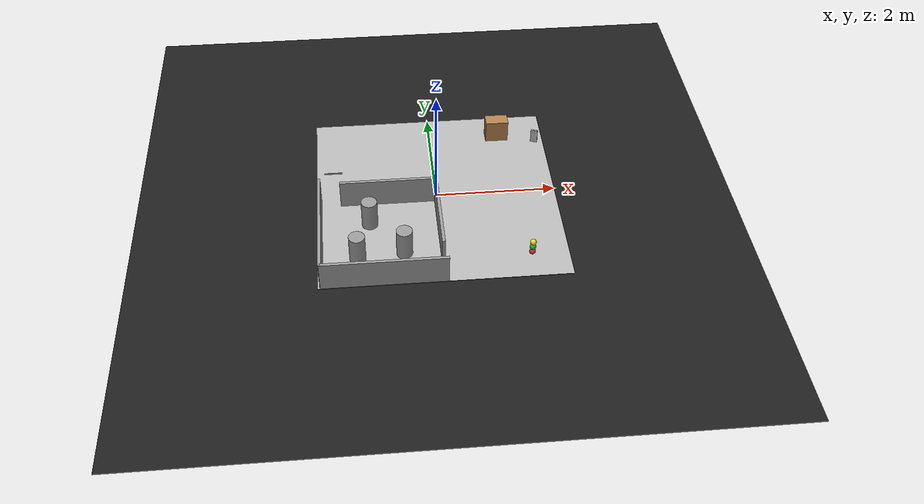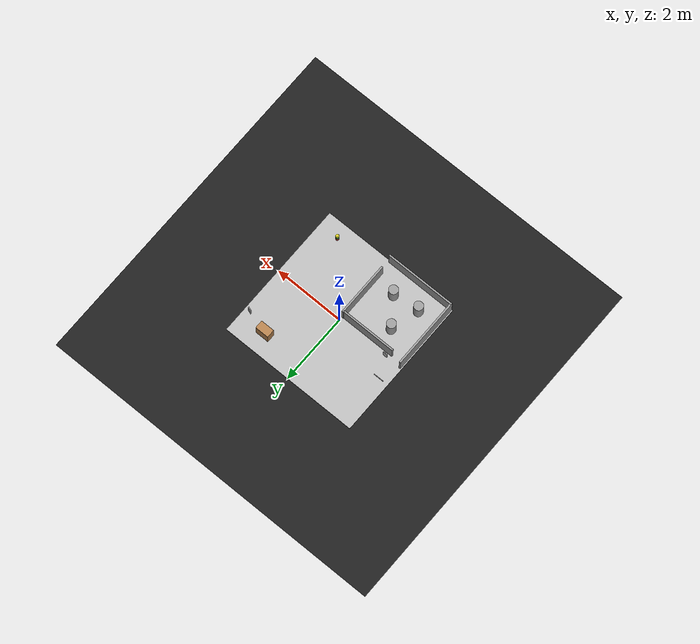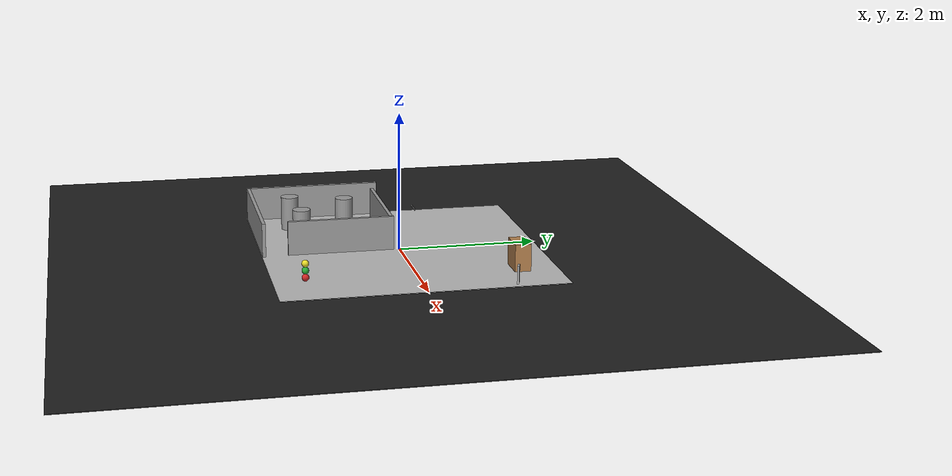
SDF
<sdf version="1.6">
 <world name="default">
  <scene>
   <ambient>0 0 0 1</ambient>
   <shadows>0</shadows>
   <grid>0</grid>
   <background>0.7 0.7 0.7 1</background>
  </scene>
  <light name="sun" type="directional">
   <pose>0 0 10 0 -0 0</pose>
   <diffuse>0.8 0.8 0.8 1</diffuse>
   <specular>0.1 0.1 0.1 1</specular>
   <attenuation>
    <range>1000</range>
    <constant>0.9</constant>
    <linear>0.01</linear>
    <quadratic>0.001</quadratic>
   </attenuation>
   <direction>-0.5 0.5 -1</direction>
  </light>
  <model name="ground">
   <static>1</static>
   <link name="ground">
    <collision name="ground_coll"><geometry><box><size>4 4 0.01</size></box></geometry></collision>
    <visual name="ground_vis">
     <geometry><box><size>4 4 0.01</size></box></geometry>
     <material><script><uri>file://course.material</uri><name>course</name></script></material>
    </visual>
   </link>
  </model>
  <model name="ground2">
   <pose>0 0 -0.1 0 -0 0</pose>
   <static>1</static>
   <link name="ground">
    <collision name="ground_coll"><geometry><box><size>8 8 0.01</size></box></geometry></collision>
    <visual name="ground_vis">
     <geometry><box><size>10 10 0.01</size></box></geometry>
     <material>
      <script><uri>file://media/materials/scripts/gazebo.material</uri><name>Gazebo/FlatBlack</name></script>
     </material>
    </visual>
   </link>
  </model>
  <gravity>0 0 -9.8</gravity>
  <magnetic_field>6e-06 2.3e-05 -4.2e-05</magnetic_field>
  <atmosphere type="adiabatic"/>
  <physics name="default_physics" default="0" type="ode">
   <max_step_size>0.001</max_step_size>
   <real_time_factor>1</real_time_factor>
   <real_time_update_rate>1000</real_time_update_rate>
  </physics>
  <spherical_coordinates>
   <surface_model>EARTH_WGS84</surface_model>
   <latitude_deg>0</latitude_deg>
   <longitude_deg>0</longitude_deg>
   <elevation>0</elevation>
   <heading_deg>0</heading_deg>
  </spherical_coordinates>
  <model name="box_occu">
   <pose>1.19 1.47 0.142601 0 0 0</pose>
   <link name="link">
    <collision name="collision"><geometry><box><size>0.39 0.23 0.5</size></box></geometry></collision>
    <visual name="visual">
     <geometry><box><size>0.39 0.23 0.5</size></box></geometry>
     <material>
      <script><uri>file://media/materials/scripts/gazebo.material</uri><name>Gazebo/WoodFloor</name></script>
     </material>
    </visual>
   </link>
   <static>1</static>
  </model>
  <model name="traffic_parking">
   <pose>1.84664 1.2771 0.13 -4.2e-05 -1e-06 -0.356066</pose>
   <link name="box">
    <collision name="collision"><geometry><box><size>0.12 0.025 0.25</size></box></geometry></collision>
    <visual name="visual">
     <geometry><box><size>0.12 0.025 0.25</size></box></geometry>
     <material>
      <script>
       <uri>model://traffic_parking/materials/scripts</uri>
       <uri>model://traffic_parking/materials/textures</uri>
       <name>traffic_parking</name>
      </script>
     </material>
    </visual>
    <inertial>
     <inertia><ixx>1</ixx><ixy>0</ixy><ixz>0</ixz><iyy>1</iyy><iyz>0</iyz><izz>1</izz></inertia>
     <mass>1</mass>
    </inertial>
   </link>
  </model>
  <model name="traffic_tunnel">
   <pose>-1.46808 -0.007372 0.130001 -4.6e-05 -2e-06 1.5e-05</pose>
   <link name="box">
    <collision name="collision"><geometry><box><size>0.12 0.025 0.25</size></box></geometry></collision>
    <visual name="visual">
     <geometry><box><size>0.12 0.025 0.25</size></box></geometry>
     <material>
      <script>
       <uri>model://traffic_tunnel/materials/scripts</uri>
       <uri>model://traffic_tunnel/materials/textures</uri>
       <name>traffic_tunnel</name>
      </script>
     </material>
    </visual>
    <inertial>
     <inertia><ixx>1</ixx><ixy>0</ixy><ixz>0</ixz><iyy>1</iyy><iyz>0</iyz><izz>1</izz></inertia>
     <mass>1</mass>
    </inertial>
   </link>
  </model>
  <light name="user_point_light_0" type="point">
   <pose>-1.53792 -1.54262 1 0 -0 0</pose>
   <diffuse>0.5 0.5 0.5 1</diffuse>
   <specular>0.1 0.1 0.1 1</specular>
   <attenuation>
    <range>20</range>
    <constant>0.5</constant>
    <linear>0.01</linear>
    <quadratic>0.001</quadratic>
   </attenuation>
   <cast_shadows>0</cast_shadows>
   <direction>0 0 -1</direction>
  </light>
  <light name="user_point_light_1" type="point">
   <pose>-0.330167 -0.35289 1 0 -0 0</pose>
   <diffuse>0.5 0.5 0.5 1</diffuse>
   <specular>0.1 0.1 0.1 1</specular>
   <attenuation>
    <range>20</range>
    <constant>0.5</constant>
    <linear>0.01</linear>
    <quadratic>0.001</quadratic>
   </attenuation>
   <cast_shadows>0</cast_shadows>
   <direction>0 0 -1</direction>
  </light>
  <light name="user_point_light_2" type="point">
   <pose>-0.948146 0.604519 1 0 -0 0</pose>
   <diffuse>0.5 0.5 0.5 1</diffuse>
   <specular>0.1 0.1 0.1 1</specular>
   <attenuation>
    <range>20</range>
    <constant>0.5</constant>
    <linear>0.01</linear>
    <quadratic>0.001</quadratic>
   </attenuation>
   <cast_shadows>0</cast_shadows>
   <direction>0 0 -1</direction>
  </light>
  <light name="user_point_light_3" type="point">
   <pose>0.815362 0.405449 1 0 -0 0</pose>
   <diffuse>0.5 0.5 0.5 1</diffuse>
   <specular>0.1 0.1 0.1 1</specular>
   <attenuation>
    <range>20</range>
    <constant>0.5</constant>
    <linear>0.01</linear>
    <quadratic>0.001</quadratic>
   </attenuation>
   <cast_shadows>0</cast_shadows>
   <direction>0 0 -1</direction>
  </light>
  <light name="user_point_light_4" type="point">
   <pose>0.987037 -1.13546 1 0 -0 0</pose>
   <diffuse>0.5 0.5 0.5 1</diffuse>
   <specular>0.1 0.1 0.1 1</specular>
   <attenuation>
    <range>20</range>
    <constant>0.5</constant>
    <linear>0.01</linear>
    <quadratic>0.001</quadratic>
   </attenuation>
   <cast_shadows>0</cast_shadows>
   <direction>0 0 -1</direction>
  </light>
  <light name="user_point_light_5" type="point">
   <pose>1.75856 -1.76167 1 0 -0 0</pose>
   <diffuse>0.5 0.5 0.5 1</diffuse>
   <specular>0.1 0.1 0.1 1</specular>
   <attenuation>
    <range>20</range>
    <constant>0.5</constant>
    <linear>0.01</linear>
    <quadratic>0.001</quadratic>
   </attenuation>
   <cast_shadows>0</cast_shadows>
   <direction>0 0 -1</direction>
  </light>
  <light name="user_point_light_6" type="point">
   <pose>1.63854 1.69565 1 0 -0 0</pose>
   <diffuse>0.5 0.5 0.5 1</diffuse>
   <specular>0.1 0.1 0.1 1</specular>
   <attenuation>
    <range>20</range>
    <constant>0.5</constant>
    <linear>0.01</linear>
    <quadratic>0.001</quadratic>
   </attenuation>
   <cast_shadows>0</cast_shadows>
   <direction>0 0 -1</direction>
  </light>
  <model name="tunnel_wall_3">
   <link name="Wall_12">
    <pose>-0.980783 0.049883 0 0 -0 1.5708</pose>
    <visual name="Wall_12_Visual">
     <pose>0 0 0.25 0 -0 0</pose>
     <geometry><box><size>2 0.05 0.5</size></box></geometry>
     <material>
      <script><uri>file://media/materials/scripts/gazebo.material</uri><name>Gazebo/Grey</name></script>
      <ambient>1 1 1 1</ambient>
      <diffuse>0.7 0.7 0.7 1</diffuse>
      <specular>0.01 0.01 0.01 1</specular>
      <emissive>0 0 0 1</emissive>
     </material>
    </visual>
    <collision name="Wall_12_Collision">
     <pose>0 0 0.25 0 -0 0</pose>
     <geometry><box><size>2 0.05 0.5</size></box></geometry>
     <surface>
      <friction>
       <ode><mu>1</mu><mu2>1</mu2><fdir1>0 0 0</fdir1><slip1>0</slip1><slip2>0</slip2></ode>
       <torsional>
        <coefficient>1</coefficient>
        <patch_radius>0</patch_radius>
        <surface_radius>0</surface_radius>
        <use_patch_radius>1</use_patch_radius>
        <ode><slip>0</slip></ode>
       </torsional>
      </friction>
      <bounce><restitution_coefficient>0</restitution_coefficient><threshold>1e+06</threshold></bounce>
      <contact>
       <collide_without_contact>0</collide_without_contact>
       <collide_without_contact_bitmask>1</collide_without_contact_bitmask>
       <collide_bitmask>1</collide_bitmask>
       <ode>
        <soft_cfm>0</soft_cfm>
        <soft_erp>0.2</soft_erp>
        <kp>1e+13</kp>
        <kd>1</kd>
        <max_vel>0.01</max_vel>
        <min_depth>0</min_depth>
       </ode>
       <bullet>
        <split_impulse>1</split_impulse>
        <split_impulse_penetration_threshold>-0.01</split_impulse_penetration_threshold>
        <soft_cfm>0</soft_cfm>
        <soft_erp>0.2</soft_erp>
        <kp>1e+13</kp>
        <kd>1</kd>
       </bullet>
      </contact>
     </surface>
    </collision>
   </link>
   <link name="Wall_14">
    <pose>0 -0.935438 0 0 -0 0</pose>
    <visual name="Wall_14_Visual">
     <pose>0 0 0.25 0 -0 0</pose>
     <geometry><box><size>2.00003 0.05 0.5</size></box></geometry>
     <material>
      <script><uri>file://media/materials/scripts/gazebo.material</uri><name>Gazebo/Grey</name></script>
      <ambient>1 1 1 1</ambient>
      <diffuse>0.7 0.7 0.7 1</diffuse>
      <specular>0.01 0.01 0.01 1</specular>
      <emissive>0 0 0 1</emissive>
     </material>
    </visual>
    <collision name="Wall_14_Collision">
     <pose>0 0 0.25 0 -0 0</pose>
     <geometry><box><size>2.00003 0.05 0.5</size></box></geometry>
     <surface>
      <friction>
       <ode><mu>1</mu><mu2>1</mu2><fdir1>0 0 0</fdir1><slip1>0</slip1><slip2>0</slip2></ode>
       <torsional>
        <coefficient>1</coefficient>
        <patch_radius>0</patch_radius>
        <surface_radius>0</surface_radius>
        <use_patch_radius>1</use_patch_radius>
        <ode><slip>0</slip></ode>
       </torsional>
      </friction>
      <bounce><restitution_coefficient>0</restitution_coefficient><threshold>1e+06</threshold></bounce>
      <contact>
       <collide_without_contact>0</collide_without_contact>
       <collide_without_contact_bitmask>1</collide_without_contact_bitmask>
       <collide_bitmask>1</collide_bitmask>
       <ode>
        <soft_cfm>0</soft_cfm>
        <soft_erp>0.2</soft_erp>
        <kp>1e+13</kp>
        <kd>1</kd>
        <max_vel>0.01</max_vel>
        <min_depth>0</min_depth>
       </ode>
       <bullet>
        <split_impulse>1</split_impulse>
        <split_impulse_penetration_threshold>-0.01</split_impulse_penetration_threshold>
        <soft_cfm>0</soft_cfm>
        <soft_erp>0.2</soft_erp>
        <kp>1e+13</kp>
        <kd>1</kd>
       </bullet>
      </contact>
     </surface>
    </collision>
   </link>
   <link name="Wall_16">
    <pose>0.943396 0.183669 0 0 -0 1.5708</pose>
    <inertial>
     <inertia><ixx>nan</ixx><ixy>0</ixy><ixz>0</ixz><iyy>nan</iyy><iyz>0</iyz><izz>nan</izz></inertia>
     <mass>0</mass>
    </inertial>
    <visual name="Wall_16_Visual">
     <pose>0 0 0.25 0 -0 0</pose>
     <geometry><box><size>1.53699 0.05 0.5</size></box></geometry>
     <material>
      <script><uri>file://media/materials/scripts/gazebo.material</uri><name>Gazebo/Grey</name></script>
      <ambient>1 1 1 1</ambient>
      <diffuse>0.7 0.7 0.7 1</diffuse>
      <specular>0.01 0.01 0.01 1</specular>
      <emissive>0 0 0 1</emissive>
     </material>
    </visual>
    <collision name="Wall_16_Collision">
     <pose>0 0 0.25 0 -0 0</pose>
     <geometry><box><size>1.53699 0.05 0.5</size></box></geometry>
     <surface>
      <friction>
       <ode><mu>1</mu><mu2>1</mu2><fdir1>0 0 0</fdir1><slip1>0</slip1><slip2>0</slip2></ode>
       <torsional>
        <coefficient>1</coefficient>
        <patch_radius>0</patch_radius>
        <surface_radius>0</surface_radius>
        <use_patch_radius>1</use_patch_radius>
        <ode><slip>0</slip></ode>
       </torsional>
      </friction>
      <bounce><restitution_coefficient>0</restitution_coefficient><threshold>1e+06</threshold></bounce>
      <contact>
       <collide_without_contact>0</collide_without_contact>
       <collide_without_contact_bitmask>1</collide_without_contact_bitmask>
       <collide_bitmask>1</collide_bitmask>
       <ode>
        <soft_cfm>0</soft_cfm>
        <soft_erp>0.2</soft_erp>
        <kp>1e+13</kp>
        <kd>1</kd>
        <max_vel>0.01</max_vel>
        <min_depth>0</min_depth>
       </ode>
       <bullet>
        <split_impulse>1</split_impulse>
        <split_impulse_penetration_threshold>-0.01</split_impulse_penetration_threshold>
        <soft_cfm>0</soft_cfm>
        <soft_erp>0.2</soft_erp>
        <kp>1e+13</kp>
        <kd>1</kd>
       </bullet>
      </contact>
     </surface>
    </collision>
   </link>
   <link name="Wall_17">
    <pose>0.15 0.915 0 0 -0 3.14159</pose>
    <visual name="Wall_17_Visual">
     <pose>0 0 0.25 0 -0 0</pose>
     <geometry><box><size>1.58 0.05 0.5</size></box></geometry>
     <material>
      <script><uri>file://media/materials/scripts/gazebo.material</uri><name>Gazebo/Grey</name></script>
      <ambient>1 1 1 1</ambient>
      <diffuse>0.7 0.7 0.7 1</diffuse>
      <specular>0.01 0.01 0.01 1</specular>
      <emissive>0 0 0 1</emissive>
     </material>
    </visual>
    <collision name="Wall_17_Collision">
     <pose>0 0 0.25 0 -0 0</pose>
     <geometry><box><size>1.58 0.05 0.5</size></box></geometry>
     <surface>
      <friction>
       <ode><mu>1</mu><mu2>1</mu2><fdir1>0 0 0</fdir1><slip1>0</slip1><slip2>0</slip2></ode>
       <torsional>
        <coefficient>1</coefficient>
        <patch_radius>0</patch_radius>
        <surface_radius>0</surface_radius>
        <use_patch_radius>1</use_patch_radius>
        <ode><slip>0</slip></ode>
       </torsional>
      </friction>
      <bounce><restitution_coefficient>0</restitution_coefficient><threshold>1e+06</threshold></bounce>
      <contact>
       <collide_without_contact>0</collide_without_contact>
       <collide_without_contact_bitmask>1</collide_without_contact_bitmask>
       <collide_bitmask>1</collide_bitmask>
       <ode>
        <soft_cfm>0</soft_cfm>
        <soft_erp>0.2</soft_erp>
        <kp>1e+13</kp>
        <kd>1</kd>
        <max_vel>0.01</max_vel>
        <min_depth>0</min_depth>
       </ode>
       <bullet>
        <split_impulse>1</split_impulse>
        <split_impulse_penetration_threshold>-0.01</split_impulse_penetration_threshold>
        <soft_cfm>0</soft_cfm>
        <soft_erp>0.2</soft_erp>
        <kp>1e+13</kp>
        <kd>1</kd>
       </bullet>
      </contact>
     </surface>
    </collision>
   </link>
   <static>1</static>
   <pose>-0.964699 -1.03574 0 0 -0 0</pose>
  </model>
  <model name="tunnel_occ_2_1">
   <link name="link_0_clone_clone">
    <pose>0.42322 -0.212034 0.25 0 -0 0</pose>
    <inertial>
     <mass>0.0416663</mass>
     <inertia>
      <ixx>0.00098188</ixx>
      <ixy>0</ixy>
      <ixz>0</ixz>
      <iyy>0.00098188</iyy>
      <iyz>0</iyz>
      <izz>0.00046751</izz>
     </inertia>
    </inertial>
    <visual name="visual">
     <geometry><cylinder><radius>0.13</radius><length>0.5</length></cylinder></geometry>
     <material>
      <lighting>1</lighting>
      <script><uri>file://media/materials/scripts/gazebo.material</uri><name>Gazebo/Grey</name></script>
      <ambient>0.3 0.3 0.3 1</ambient>
      <diffuse>0.7 0.7 0.7 1</diffuse>
      <specular>0.01 0.01 0.01 1</specular>
      <emissive>0 0 0 1</emissive>
      <shader type="pixel"><normal_map>__default__</normal_map></shader>
     </material>
    </visual>
    <collision name="collision">
     <geometry><cylinder><radius>0.149803</radius><length>0.46418</length></cylinder></geometry>
     <surface>
      <friction>
       <ode><mu>1</mu><mu2>1</mu2><fdir1>0 0 0</fdir1><slip1>0</slip1><slip2>0</slip2></ode>
       <torsional>
        <coefficient>1</coefficient>
        <patch_radius>0</patch_radius>
        <surface_radius>0</surface_radius>
        <use_patch_radius>1</use_patch_radius>
        <ode><slip>0</slip></ode>
       </torsional>
      </friction>
      <bounce><restitution_coefficient>0</restitution_coefficient><threshold>1e+06</threshold></bounce>
      <contact>
       <collide_without_contact>0</collide_without_contact>
       <collide_without_contact_bitmask>1</collide_without_contact_bitmask>
       <collide_bitmask>1</collide_bitmask>
       <ode>
        <soft_cfm>0</soft_cfm>
        <soft_erp>0.2</soft_erp>
        <kp>1e+13</kp>
        <kd>1</kd>
        <max_vel>0.01</max_vel>
        <min_depth>0</min_depth>
       </ode>
       <bullet>
        <split_impulse>1</split_impulse>
        <split_impulse_penetration_threshold>-0.01</split_impulse_penetration_threshold>
        <soft_cfm>0</soft_cfm>
        <soft_erp>0.2</soft_erp>
        <kp>1e+13</kp>
        <kd>1</kd>
       </bullet>
      </contact>
     </surface>
    </collision>
   </link>
   <link name="link_0_clone_clone_clone">
    <pose>-0.323729 -0.287563 0.25 0 -0 0</pose>
    <inertial>
     <mass>0.0416663</mass>
     <inertia>
      <ixx>0.00098188</ixx>
      <ixy>0</ixy>
      <ixz>0</ixz>
      <iyy>0.00098188</iyy>
      <iyz>0</iyz>
      <izz>0.00046751</izz>
     </inertia>
    </inertial>
    <visual name="visual">
     <geometry><cylinder><radius>0.13</radius><length>0.5</length></cylinder></geometry>
     <material>
      <lighting>1</lighting>
      <script><uri>file://media/materials/scripts/gazebo.material</uri><name>Gazebo/Grey</name></script>
      <ambient>0.3 0.3 0.3 1</ambient>
      <diffuse>0.7 0.7 0.7 1</diffuse>
      <specular>0.01 0.01 0.01 1</specular>
      <emissive>0 0 0 1</emissive>
      <shader type="pixel"><normal_map>__default__</normal_map></shader>
     </material>
    </visual>
    <collision name="collision">
     <geometry><cylinder><radius>0.149803</radius><length>0.46418</length></cylinder></geometry>
     <surface>
      <friction>
       <ode><mu>1</mu><mu2>1</mu2><fdir1>0 0 0</fdir1><slip1>0</slip1><slip2>0</slip2></ode>
       <torsional>
        <coefficient>1</coefficient>
        <patch_radius>0</patch_radius>
        <surface_radius>0</surface_radius>
        <use_patch_radius>1</use_patch_radius>
        <ode><slip>0</slip></ode>
       </torsional>
      </friction>
      <bounce><restitution_coefficient>0</restitution_coefficient><threshold>1e+06</threshold></bounce>
      <contact>
       <collide_without_contact>0</collide_without_contact>
       <collide_without_contact_bitmask>1</collide_without_contact_bitmask>
       <collide_bitmask>1</collide_bitmask>
       <ode>
        <soft_cfm>0</soft_cfm>
        <soft_erp>0.2</soft_erp>
        <kp>1e+13</kp>
        <kd>1</kd>
        <max_vel>0.01</max_vel>
        <min_depth>0</min_depth>
       </ode>
       <bullet>
        <split_impulse>1</split_impulse>
        <split_impulse_penetration_threshold>-0.01</split_impulse_penetration_threshold>
        <soft_cfm>0</soft_cfm>
        <soft_erp>0.2</soft_erp>
        <kp>1e+13</kp>
        <kd>1</kd>
       </bullet>
      </contact>
     </surface>
    </collision>
   </link>
   <link name="link_0_clone_clone_clone_clone">
    <pose>-0.099492 0.499594 0.25 0 -0 0</pose>
    <inertial>
     <mass>0.0416663</mass>
     <inertia>
      <ixx>0.00098188</ixx>
      <ixy>0</ixy>
      <ixz>0</ixz>
      <iyy>0.00098188</iyy>
      <iyz>0</iyz>
      <izz>0.00046751</izz>
     </inertia>
    </inertial>
    <visual name="visual">
     <geometry><cylinder><radius>0.13</radius><length>0.5</length></cylinder></geometry>
     <material>
      <lighting>1</lighting>
      <script><uri>file://media/materials/scripts/gazebo.material</uri><name>Gazebo/Grey</name></script>
      <ambient>0.3 0.3 0.3 1</ambient>
      <diffuse>0.7 0.7 0.7 1</diffuse>
      <specular>0.01 0.01 0.01 1</specular>
      <emissive>0 0 0 1</emissive>
      <shader type="pixel"><normal_map>__default__</normal_map></shader>
     </material>
    </visual>
    <collision name="collision">
     <geometry><cylinder><radius>0.149803</radius><length>0.46418</length></cylinder></geometry>
     <surface>
      <friction>
       <ode><mu>1</mu><mu2>1</mu2><fdir1>0 0 0</fdir1><slip1>0</slip1><slip2>0</slip2></ode>
       <torsional>
        <coefficient>1</coefficient>
        <patch_radius>0</patch_radius>
        <surface_radius>0</surface_radius>
        <use_patch_radius>1</use_patch_radius>
        <ode><slip>0</slip></ode>
       </torsional>
      </friction>
      <bounce><restitution_coefficient>0</restitution_coefficient><threshold>1e+06</threshold></bounce>
      <contact>
       <collide_without_contact>0</collide_without_contact>
       <collide_without_contact_bitmask>1</collide_without_contact_bitmask>
       <collide_bitmask>1</collide_bitmask>
       <ode>
        <soft_cfm>0</soft_cfm>
        <soft_erp>0.2</soft_erp>
        <kp>1e+13</kp>
        <kd>1</kd>
        <max_vel>0.01</max_vel>
        <min_depth>0</min_depth>
       </ode>
       <bullet>
        <split_impulse>1</split_impulse>
        <split_impulse_penetration_threshold>-0.01</split_impulse_penetration_threshold>
        <soft_cfm>0</soft_cfm>
        <soft_erp>0.2</soft_erp>
        <kp>1e+13</kp>
        <kd>1</kd>
       </bullet>
      </contact>
     </surface>
    </collision>
   </link>
   <static>1</static>
   <pose>-1.04145 -1.12671 0 0 -0 0</pose>
  </model>
  <model name="unit_box">
   <pose>-1.72  0.56 0.12 0 0 -0.0</pose>
   <link name="traffic_bar">
    <inertial>
     <mass>1</mass>
     <inertia>
      <ixx>0.166667</ixx>
      <ixy>0</ixy>
      <ixz>0</ixz>
      <iyy>0.166667</iyy>
      <iyz>0</iyz>
      <izz>0.166667</izz>
     </inertia>
    </inertial>
    <collision name="collision"><geometry><box><size>0.4 0.023 0.09</size></box></geometry></collision>
    <visual name="visual">
     <geometry><box><size>0.3 0.01 0.023</size></box></geometry>
     <material>
      <script>
       <uri>model://traffic_bar_burger/materials/scripts</uri>
       <uri>model://traffic_bar_burger/materials/textures</uri>
       <name>traffic_bar</name>
      </script>
     </material>
    </visual>
   </link>
   <plugin name="traffic_control" filename="build/libtraffic_control.so"/>
   <static>1</static>
  </model>
  <model name="unit_sphere">
   <pose>1.39 -1.57 0.111741 0 -0 0</pose>
   <link name="light_r">
    <inertial>
     <mass>1</mass>
     <inertia><ixx>0.1</ixx><ixy>0</ixy><ixz>0</ixz><iyy>0.1</iyy><iyz>0</iyz><izz>0.1</izz></inertia>
    </inertial>
    <collision name="collision"><geometry><sphere><radius>0.05</radius></sphere></geometry></collision>
    <visual name="visual">
     <geometry><sphere><radius>0.05</radius></sphere></geometry>
     <material>
      <script><name>Gazebo/Red</name><uri>file://media/materials/scripts/gazebo.material</uri></script>
     </material>
    </visual>
   </link>
   <plugin name="traffic_control" filename="build/libtraffic_control.so"/>
   <static>1</static>
  </model>
  <model name="unit_sphere_clone">
   <pose>1.39 -1.57 0.211741 0 -0 0</pose>
   <link name="light_g">
    <inertial>
     <mass>1</mass>
     <inertia><ixx>0.1</ixx><ixy>0</ixy><ixz>0</ixz><iyy>0.1</iyy><iyz>0</iyz><izz>0.1</izz></inertia>
    </inertial>
    <collision name="collision"><geometry><sphere><radius>0.05</radius></sphere></geometry></collision>
    <visual name="visual">
     <geometry><sphere><radius>0.05</radius></sphere></geometry>
     <material>
      <script><name>Gazebo/Green</name><uri>file://media/materials/scripts/gazebo.material</uri></script>
     </material>
    </visual>
   </link>
   <plugin name="traffic_control" filename="build/libtraffic_control.so"/>
   <static>1</static>
  </model>
  <model name="unit_sphere_clone_clone">
   <pose>1.39 -1.57 0.311741 0 -0 0</pose>
   <link name="light_y">
    <inertial>
     <mass>1</mass>
     <inertia><ixx>0.1</ixx><ixy>0</ixy><ixz>0</ixz><iyy>0.1</iyy><iyz>0</iyz><izz>0.1</izz></inertia>
    </inertial>
    <collision name="collision"><geometry><sphere><radius>0.05</radius></sphere></geometry></collision>
    <visual name="visual">
     <geometry><sphere><radius>0.05</radius></sphere></geometry>
     <material>
      <script><name>Gazebo/Yellow</name><uri>file://media/materials/scripts/gazebo.material</uri></script>
     </material>
    </visual>
   </link>
   <plugin name="traffic_control" filename="build/libtraffic_control.so"/>
   <static>1</static>
  </model>
 </world>
</sdf>
